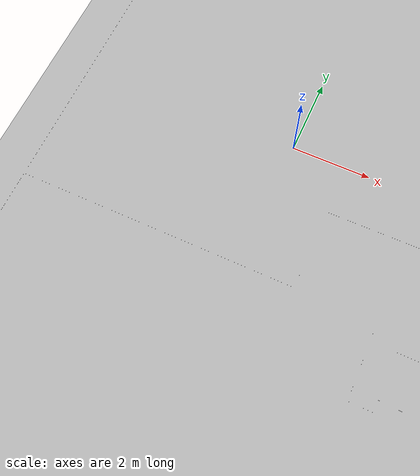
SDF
<sdf version="1.6">
 <world name="default">
  <scene><ambient>0.5 0.5 0.5 1</ambient><background>0.5 0.5 0.5 1</background><shadows>0</shadows></scene>
  <physics name="default_physics" default="0" type="ode">
   <ode>
    <solver>
     <type>quick</type>
     <iters>200</iters>
     <sor>1.3</sor>
     <use_dynamic_moi_rescaling>0</use_dynamic_moi_rescaling>
    </solver>
    <constraints>
     <cfm>0</cfm>
     <erp>0.2</erp>
     <contact_max_correcting_vel>100</contact_max_correcting_vel>
     <contact_surface_layer>0.001</contact_surface_layer>
    </constraints>
   </ode>
   <real_time_update_rate>1000</real_time_update_rate>
   <max_step_size>0.002</max_step_size>
   <real_time_factor>1</real_time_factor>
  </physics>
  <model name="docking_base">
   <link name="docking_pattern">
    <pose>2 0 0 0 -0 0</pose>
    <collision name="docking_pattern_collision">
     <geometry>
      <mesh>
       <uri>model://media/models/docking_pattern/meshes/models/docking_pattern.stl</uri>
       <scale>1 1 1</scale>
      </mesh>
     </geometry>
    </collision>
    <visual name="docking_pattern_visual">
     <geometry>
      <mesh>
       <uri>model://media/models/docking_pattern/meshes/models/docking_pattern.stl</uri>
       <scale>1 1 1</scale>
      </mesh>
     </geometry>
     <cast_shadows>0</cast_shadows>
    </visual>
   </link>
   <static>1</static>
  </model>
  <model name="7thmap">
   <pose>9 -10 0 0 -0 0</pose>
   <static>1</static>
   <link name="body">
    <collision name="collision">
     <geometry><mesh><uri>model://media/models/7thmap_new/7thmap.dae</uri></mesh></geometry>
     <surface>
      <friction>
       <ode><mu>1e+08</mu><mu2>1e+08</mu2><fdir1>0 0 0</fdir1><slip1>0</slip1><slip2>0</slip2></ode>
      </friction>
      <bounce><restitution_coefficient>0</restitution_coefficient><threshold>1e+06</threshold></bounce>
      <contact>
       <ode>
        <soft_cfm>0</soft_cfm>
        <soft_erp>0.2</soft_erp>
        <kp>1e+10</kp>
        <kd>1</kd>
        <max_vel>100</max_vel>
        <min_depth>0.0001</min_depth>
       </ode>
      </contact>
     </surface>
    </collision>
    <visual name="visual">
     <geometry><mesh><uri>model://media/models/7thmap_new/7thmap.dae</uri></mesh></geometry>
     <material><script><name>__default__</name><uri>__default__</uri></script></material>
     <cast_shadows>0</cast_shadows>
    </visual>
    <velocity_decay><linear>0</linear><angular>0</angular></velocity_decay>
   </link>
   <static>1</static>
  </model>
  <light name="my_light_01" type="directional">
   <pose>0 0 30 0 -0 0</pose>
   <diffuse>0.9 0.9 0.9 1</diffuse>
   <specular>0.6 0.6 0.6 1</specular>
   <attenuation><range>20</range></attenuation>
   <direction>0 0 -1</direction>
   <cast_shadows>0</cast_shadows>
  </light>
  <light name="my_light_02" type="directional">
   <pose>0 0 30 0 -0 0</pose>
   <diffuse>0.9 0.9 0.9 1</diffuse>
   <specular>0.6 0.6 0.6 1</specular>
   <attenuation><range>20</range></attenuation>
   <direction>-1 0 0</direction>
   <cast_shadows>0</cast_shadows>
  </light>
  <light name="my_light_03" type="directional">
   <pose>0 0 30 0 -0 0</pose>
   <diffuse>0.9 0.9 0.9 1</diffuse>
   <specular>0.6 0.6 0.6 1</specular>
   <attenuation><range>20</range></attenuation>
   <direction>0 -1 0</direction>
   <cast_shadows>0</cast_shadows>
  </light>
  <light name="my_light_04" type="directional">
   <pose>0 0 30 0 -0 0</pose>
   <diffuse>0.9 0.9 0.9 1</diffuse>
   <specular>0.6 0.6 0.6 1</specular>
   <attenuation><range>20</range></attenuation>
   <direction>0 0 1</direction>
   <cast_shadows>0</cast_shadows>
  </light>
  <light name="my_light_05" type="directional">
   <pose>0 0 30 0 -0 0</pose>
   <diffuse>0.9 0.9 0.9 1</diffuse>
   <specular>0.6 0.6 0.6 1</specular>
   <attenuation><range>20</range></attenuation>
   <direction>1 0 0</direction>
   <cast_shadows>0</cast_shadows>
  </light>
  <light name="my_light_06" type="directional">
   <pose>0 0 30 0 -0 0</pose>
   <diffuse>0.9 0.9 0.9 1</diffuse>
   <specular>0.6 0.6 0.6 1</specular>
   <attenuation><range>20</range></attenuation>
   <direction>0 1 0</direction>
   <cast_shadows>0</cast_shadows>
  </light>
  <gravity>0 0 -9.8</gravity>
  <magnetic_field>6e-06 2.3e-05 -4.2e-05</magnetic_field>
  <atmosphere type="adiabatic"/>
  <spherical_coordinates>
   <surface_model>EARTH_WGS84</surface_model>
   <latitude_deg>0</latitude_deg>
   <longitude_deg>0</longitude_deg>
   <elevation>0</elevation>
   <heading_deg>0</heading_deg>
  </spherical_coordinates>
  <model name="pessoa1">
   <static>0</static>
   <link name="base">
    <collision name="collision">
     <geometry>
      <mesh><uri>model://pessoa1/meshes/models/citizen_female.dae</uri><scale>0.4 0.4 0.4</scale></mesh>
     </geometry>
    </collision>
    <visual name="visual">
     <geometry>
      <mesh><uri>model://pessoa1/meshes/models/citizen_female.dae</uri><scale>0.4 0.4 0.4</scale></mesh>
     </geometry>
    </visual>
    <inertial>
     <inertia><ixx>1</ixx><ixy>0</ixy><ixz>0</ixz><iyy>1</iyy><iyz>0</iyz><izz>1</izz></inertia>
     <mass>1</mass>
    </inertial>
   </link>
   <pose>-1.91296 2.00544 0.000427 0.001608 -0.025057 -0.000663</pose>
  </model>
  <model name="pessoa2">
   <static>0</static>
   <link name="base">
    <collision name="collision">
     <geometry>
      <mesh><uri>model://pessoa2/meshes/models/citizen_male.dae</uri><scale>0.4 0.4 0.4</scale></mesh>
     </geometry>
    </collision>
    <visual name="visual">
     <geometry>
      <mesh><uri>model://pessoa2/meshes/models/citizen_male.dae</uri><scale>0.4 0.4 0.4</scale></mesh>
     </geometry>
    </visual>
    <inertial>
     <inertia><ixx>1</ixx><ixy>0</ixy><ixz>0</ixz><iyy>1</iyy><iyz>0</iyz><izz>1</izz></inertia>
     <mass>1</mass>
    </inertial>
   </link>
   <pose>-2.86151 1.11405 0.010911 0.012565 0.002311 1.65564</pose>
  </model>
  <model name="pessoa1_clone">
   <static>0</static>
   <link name="base">
    <collision name="collision">
     <geometry>
      <mesh><uri>model://pessoa1/meshes/models/citizen_female.dae</uri><scale>0.4 0.4 0.4</scale></mesh>
     </geometry>
    </collision>
    <visual name="visual">
     <geometry>
      <mesh><uri>model://pessoa1/meshes/models/citizen_female.dae</uri><scale>0.4 0.4 0.4</scale></mesh>
     </geometry>
    </visual>
    <inertial>
     <inertia><ixx>1</ixx><ixy>0</ixy><ixz>0</ixz><iyy>1</iyy><iyz>0</iyz><izz>1</izz></inertia>
     <mass>1</mass>
    </inertial>
   </link>
   <pose>-1.96447 -5.27536 0.000427 0.001605 -0.025052 -0.000663</pose>
  </model>
  <model name="pessoa2_clone">
   <static>0</static>
   <link name="base">
    <collision name="collision">
     <geometry>
      <mesh><uri>model://pessoa2/meshes/models/citizen_male.dae</uri><scale>0.4 0.4 0.4</scale></mesh>
     </geometry>
    </collision>
    <visual name="visual">
     <geometry>
      <mesh><uri>model://pessoa2/meshes/models/citizen_male.dae</uri><scale>0.4 0.4 0.4</scale></mesh>
     </geometry>
    </visual>
    <inertial>
     <inertia><ixx>1</ixx><ixy>0</ixy><ixz>0</ixz><iyy>1</iyy><iyz>0</iyz><izz>1</izz></inertia>
     <mass>1</mass>
    </inertial>
   </link>
   <pose>-2.90214 -6.0862 0.010911 0.012565 0.002311 1.65564</pose>
  </model>
  <model name="pessoa1_clone_clone">
   <static>0</static>
   <link name="base">
    <collision name="collision">
     <geometry>
      <mesh><uri>model://pessoa1/meshes/models/citizen_female.dae</uri><scale>0.4 0.4 0.4</scale></mesh>
     </geometry>
    </collision>
    <visual name="visual">
     <geometry>
      <mesh><uri>model://pessoa1/meshes/models/citizen_female.dae</uri><scale>0.4 0.4 0.4</scale></mesh>
     </geometry>
    </visual>
    <inertial>
     <inertia><ixx>1</ixx><ixy>0</ixy><ixz>0</ixz><iyy>1</iyy><iyz>0</iyz><izz>1</izz></inertia>
     <mass>1</mass>
    </inertial>
   </link>
   <pose>-0.279206 -5.08514 0.000427 0.001608 -0.025072 -0.000663</pose>
  </model>
  <model name="pioneer3at">
   <pose>-1.52098 -5.84555 0.170004 0 -0 0.000191</pose>
   <static>0</static>
   <link name="chassis">
    <inertial>
     <mass>14</mass>
     <inertia>
      <ixx>0.147117</ixx>
      <ixy>0</ixy>
      <ixz>0</ixz>
      <iyy>0.334951</iyy>
      <iyz>0</iyz>
      <izz>0.397834</izz>
     </inertia>
    </inertial>
    <collision name="collision"><geometry><box><size>0.501 0.3 0.19</size></box></geometry></collision>
    <visual name="visual">
     <geometry><mesh><uri>model://pioneer3at/meshes/chassis.dae</uri></mesh></geometry>
    </visual>
   </link>
   <link name="right_front_wheel">
    <pose>0.125 -0.201 -0.06 1.5707 -0 0</pose>
    <inertial>
     <mass>1.5</mass>
     <inertia>
      <ixx>0.00524062</ixx>
      <iyy>0.00524062</iyy>
      <izz>0.009075</izz>
      <ixy>0</ixy>
      <ixz>0</ixz>
      <iyz>0</iyz>
     </inertia>
    </inertial>
    <collision name="collision">
     <geometry><cylinder><radius>0.11</radius><length>0.075</length></cylinder></geometry>
     <surface><friction><ode><mu>1</mu><mu2>1</mu2><slip1>0.5</slip1><slip2>0</slip2></ode></friction></surface>
    </collision>
    <visual name="visual">
     <geometry><mesh><uri>model://pioneer3at/meshes/wheel.dae</uri></mesh></geometry>
    </visual>
   </link>
   <link name="left_front_wheel">
    <pose>0.125 0.201 -0.06 1.5707 -0 0</pose>
    <inertial>
     <mass>1.5</mass>
     <inertia>
      <ixx>0.00524062</ixx>
      <iyy>0.00524062</iyy>
      <izz>0.009075</izz>
      <ixy>0</ixy>
      <ixz>0</ixz>
      <iyz>0</iyz>
     </inertia>
    </inertial>
    <collision name="collision">
     <geometry><cylinder><radius>0.11</radius><length>0.075</length></cylinder></geometry>
     <surface><friction><ode><mu>1</mu><mu2>1</mu2><slip1>0.5</slip1><slip2>0</slip2></ode></friction></surface>
    </collision>
    <visual name="visual">
     <geometry><mesh><uri>model://pioneer3at/meshes/wheel.dae</uri></mesh></geometry>
    </visual>
   </link>
   <link name="right_rear_wheel">
    <pose>-0.125 -0.201 -0.06 1.5707 -0 0</pose>
    <inertial>
     <mass>1.5</mass>
     <inertia>
      <ixx>0.00524062</ixx>
      <iyy>0.00524062</iyy>
      <izz>0.009075</izz>
      <ixy>0</ixy>
      <ixz>0</ixz>
      <iyz>0</iyz>
     </inertia>
    </inertial>
    <collision name="collision">
     <geometry><cylinder><radius>0.11</radius><length>0.075</length></cylinder></geometry>
     <surface><friction><ode><mu>1</mu><mu2>1</mu2><slip1>0.5</slip1><slip2>0</slip2></ode></friction></surface>
    </collision>
    <visual name="visual">
     <geometry><mesh><uri>model://pioneer3at/meshes/wheel.dae</uri></mesh></geometry>
    </visual>
   </link>
   <link name="left_rear_wheel">
    <pose>-0.125 0.201 -0.06 1.5707 -0 0</pose>
    <inertial>
     <mass>1.5</mass>
     <inertia>
      <ixx>0.00524062</ixx>
      <iyy>0.00524062</iyy>
      <izz>0.009075</izz>
      <ixy>0</ixy>
      <ixz>0</ixz>
      <iyz>0</iyz>
     </inertia>
    </inertial>
    <collision name="collision">
     <geometry><cylinder><radius>0.11</radius><length>0.075</length></cylinder></geometry>
     <surface><friction><ode><mu>1</mu><mu2>1</mu2><slip1>0.5</slip1><slip2>0</slip2></ode></friction></surface>
    </collision>
    <visual name="visual">
     <geometry><mesh><uri>model://pioneer3at/meshes/wheel.dae</uri></mesh></geometry>
    </visual>
   </link>
   <joint name="right_front" type="revolute">
    <child>right_front_wheel</child>
    <parent>chassis</parent>
    <axis>
     <xyz>0 1 0</xyz>
     <use_parent_model_frame>1</use_parent_model_frame>
     <limit><lower>-1e+16</lower><upper>1e+16</upper></limit>
     <dynamics><spring_reference>0</spring_reference><spring_stiffness>0</spring_stiffness></dynamics>
    </axis>
   </joint>
   <joint name="right_rear" type="revolute">
    <child>right_rear_wheel</child>
    <parent>chassis</parent>
    <axis>
     <xyz>0 1 0</xyz>
     <use_parent_model_frame>1</use_parent_model_frame>
     <limit><lower>-1e+16</lower><upper>1e+16</upper></limit>
     <dynamics><spring_reference>0</spring_reference><spring_stiffness>0</spring_stiffness></dynamics>
    </axis>
   </joint>
   <joint name="left_front" type="revolute">
    <child>left_front_wheel</child>
    <parent>chassis</parent>
    <axis>
     <xyz>0 1 0</xyz>
     <use_parent_model_frame>1</use_parent_model_frame>
     <limit><lower>-1e+16</lower><upper>1e+16</upper></limit>
     <dynamics><spring_reference>0</spring_reference><spring_stiffness>0</spring_stiffness></dynamics>
    </axis>
   </joint>
   <joint name="left_rear" type="revolute">
    <child>left_rear_wheel</child>
    <parent>chassis</parent>
    <axis>
     <xyz>0 1 0</xyz>
     <use_parent_model_frame>1</use_parent_model_frame>
     <limit><lower>-1e+16</lower><upper>1e+16</upper></limit>
     <dynamics><spring_reference>0</spring_reference><spring_stiffness>0</spring_stiffness></dynamics>
    </axis>
   </joint>
   <plugin name="SkidSteerDrivePlugin" filename="libSkidSteerDrivePlugin.so">
    <right_front>right_front</right_front>
    <right_rear>right_rear</right_rear>
    <left_front>left_front</left_front>
    <left_rear>left_rear</left_rear>
    <MaxForce>5.0</MaxForce>
   </plugin>
  </model>
  <model name="pessoa2_clone_clone">
   <static>0</static>
   <link name="base">
    <collision name="collision">
     <geometry>
      <mesh><uri>model://pessoa2/meshes/models/citizen_male.dae</uri><scale>0.4 0.4 0.4</scale></mesh>
     </geometry>
    </collision>
    <visual name="visual">
     <geometry>
      <mesh><uri>model://pessoa2/meshes/models/citizen_male.dae</uri><scale>0.4 0.4 0.4</scale></mesh>
     </geometry>
    </visual>
    <inertial>
     <inertia><ixx>1</ixx><ixy>0</ixy><ixz>0</ixz><iyy>1</iyy><iyz>0</iyz><izz>1</izz></inertia>
     <mass>1</mass>
    </inertial>
   </link>
   <pose>-1.93913 -8.69644 0.010911 0.012565 0.002311 1.65564</pose>
  </model>
  <model name="pessoa1_clone_clone_0">
   <static>0</static>
   <link name="base">
    <collision name="collision">
     <geometry>
      <mesh><uri>model://pessoa1/meshes/models/citizen_female.dae</uri><scale>0.4 0.4 0.4</scale></mesh>
     </geometry>
    </collision>
    <visual name="visual">
     <geometry>
      <mesh><uri>model://pessoa1/meshes/models/citizen_female.dae</uri><scale>0.4 0.4 0.4</scale></mesh>
     </geometry>
    </visual>
    <inertial>
     <inertia><ixx>1</ixx><ixy>0</ixy><ixz>0</ixz><iyy>1</iyy><iyz>0</iyz><izz>1</izz></inertia>
     <mass>1</mass>
    </inertial>
   </link>
   <pose>-1.17886 -7.82216 0.000427 0.001606 -0.025059 -0.000663</pose>
  </model>
  <audio><device>default</device></audio>
 </world>
</sdf>
